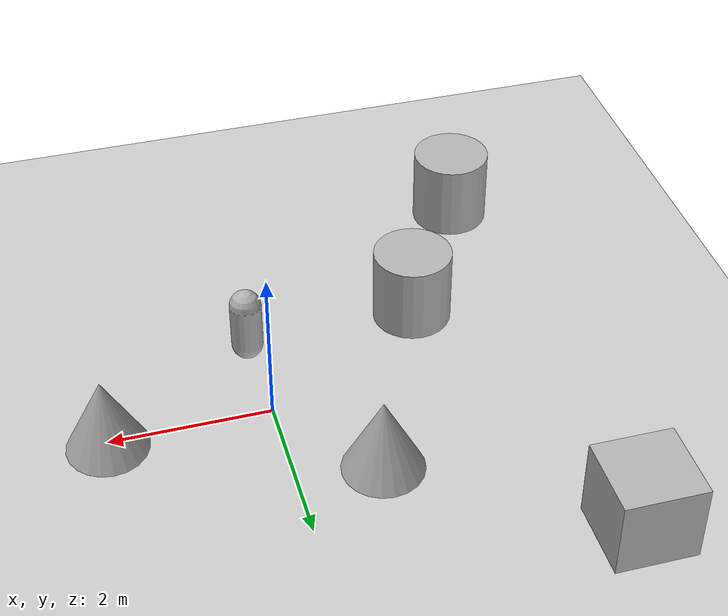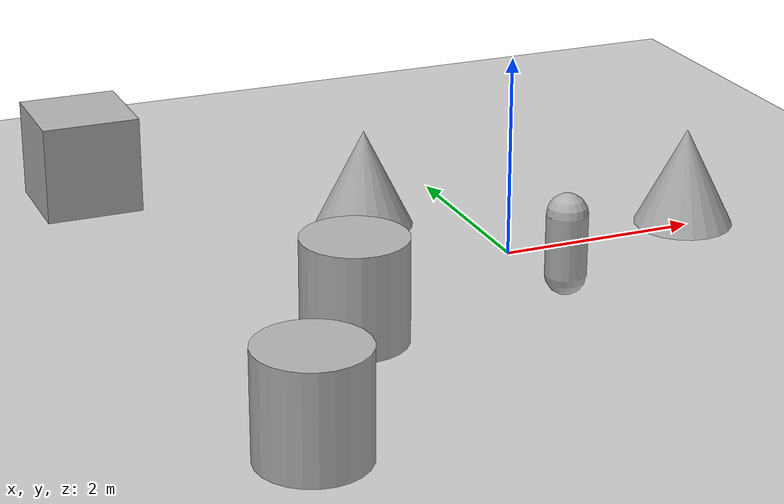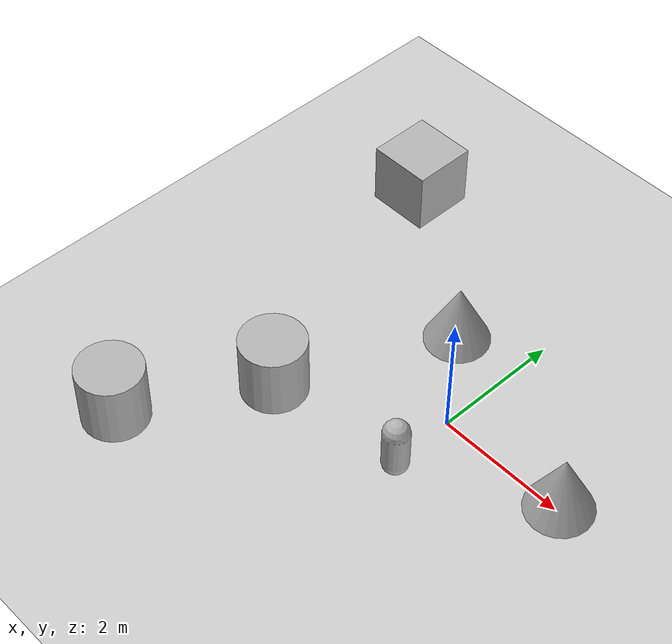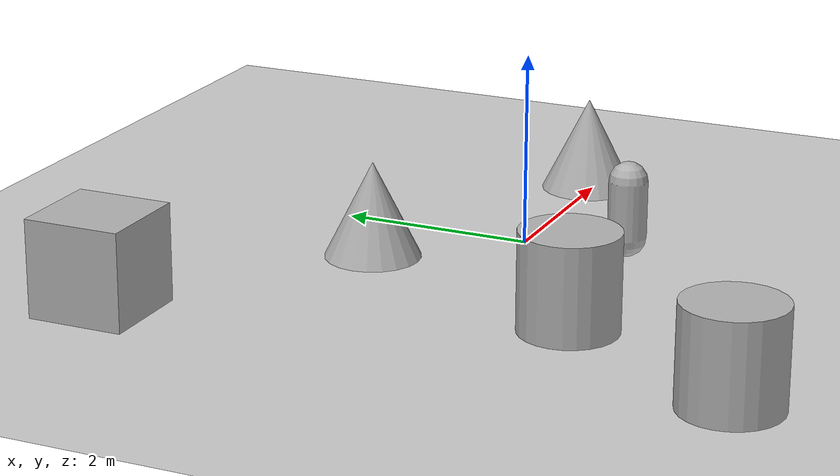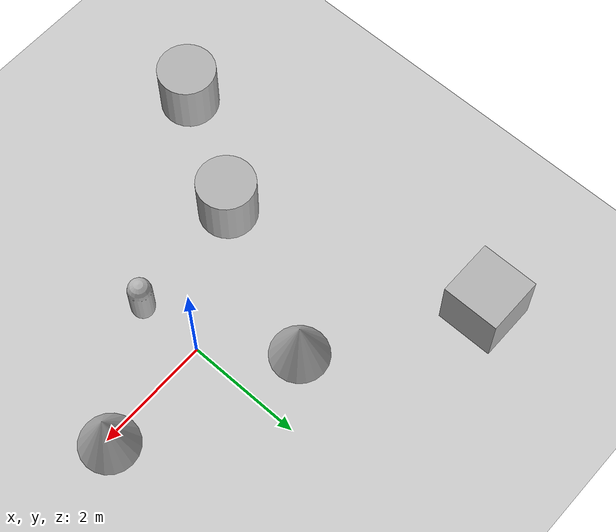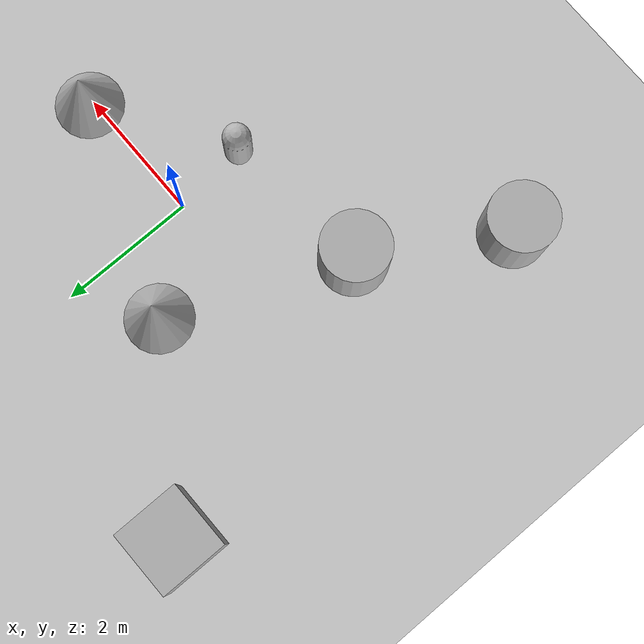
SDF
<sdf version='1.10'>
  <world name='empty'>
    <physics name='1ms' type='ignored'>
      <max_step_size>0.008</max_step_size>
      <real_time_factor>1</real_time_factor>
    </physics>
    <plugin name='gz::sim::systems::Physics' filename='gz-sim-physics-system'/>
    <plugin name='gz::sim::systems::UserCommands' filename='gz-sim-user-commands-system'/>
    <plugin name='gz::sim::systems::SceneBroadcaster' filename='gz-sim-scene-broadcaster-system'/>
    <plugin name='gz::sim::systems::Sensors' filename='gz-sim-sensors-system'>
      <render_engine>ogre2</render_engine>
    </plugin>
    <plugin name='gz::sim::systems::Contact' filename='gz-sim-contact-system'/>
    <plugin name='gz::sim::systems::Imu' filename='gz-sim-imu-system'/>
    <gravity>0 0 -9.8</gravity>
    <magnetic_field>5.5645e-06 2.28758e-05 -4.23884e-05</magnetic_field>
    <atmosphere type='adiabatic'/>
    <scene>
      <ambient>0.4 0.4 0.4 1</ambient>
      <background>0.7 0.7 0.7 1</background>
      <shadows>true</shadows>
    </scene>
    <model name='ground_plane'>
      <static>true</static>
      <link name='link'>
        <collision name='collision'>
          <geometry>
            <plane>
              <normal>0 0 1</normal>
              <size>100 100</size>
            </plane>
          </geometry>
          <surface>
            <friction>
              <ode/>
            </friction>
            <bounce/>
            <contact/>
          </surface>
        </collision>
        <visual name='visual'>
          <geometry>
            <plane>
              <normal>0 0 1</normal>
              <size>100 100</size>
            </plane>
          </geometry>
          <material>
            <ambient>0.800000012 0.800000012 0.800000012 1</ambient>
            <diffuse>0.800000012 0.800000012 0.800000012 1</diffuse>
            <specular>0.800000012 0.800000012 0.800000012 1</specular>
          </material>
        </visual>
        <pose>0 0 0 0 0 0</pose>
        <inertial>
          <pose>0 0 0 0 0 0</pose>
          <mass>1</mass>
          <inertia>
            <ixx>1</ixx>
            <ixy>0</ixy>
            <ixz>0</ixz>
            <iyy>1</iyy>
            <iyz>0</iyz>
            <izz>1</izz>
          </inertia>
        </inertial>
        <enable_wind>false</enable_wind>
      </link>
      <pose>0 0 0 0 0 0</pose>
      <self_collide>false</self_collide>
    </model>
    <model name='box'>
      <pose>-3.496140718460083 2.9788599014282227 0.49999999372787457 2.3584134510596992e-19 1.0178344142455331e-19 -4.2601430411892934e-20</pose>
      <link name='box_link'>
        <inertial>
          <inertia>
            <ixx>0.16666</ixx>
            <ixy>0</ixy>
            <ixz>0</ixz>
            <iyy>0.16666</iyy>
            <iyz>0</iyz>
            <izz>0.16666</izz>
          </inertia>
          <mass>1</mass>
          <pose>0 0 0 0 0 0</pose>
        </inertial>
        <collision name='box_collision'>
          <geometry>
            <box>
              <size>1 1 1</size>
            </box>
          </geometry>
          <surface>
            <friction>
              <ode/>
            </friction>
            <bounce/>
            <contact/>
          </surface>
        </collision>
        <visual name='box_visual'>
          <geometry>
            <box>
              <size>1 1 1</size>
            </box>
          </geometry>
          <material>
            <ambient>0.300000012 0.300000012 0.300000012 1</ambient>
            <diffuse>0.699999988 0.699999988 0.699999988 1</diffuse>
            <specular>1 1 1 1</specular>
          </material>
        </visual>
        <pose>0 0 0 0 0 0</pose>
        <enable_wind>false</enable_wind>
      </link>
      <static>false</static>
      <self_collide>false</self_collide>
    </model>
    <model name='cone'>
      <pose>2.0053477259607475 0.065855355066240601 0.4999998124005901 8.7418024087821319e-08 -5.4902019959893682e-08 -1.085374784870802e-12</pose>
      <link name='cone_link'>
        <inertial>
          <inertia>
            <ixx>0.074999999999999997</ixx>
            <ixy>0</ixy>
            <ixz>0</ixz>
            <iyy>0.074999999999999997</iyy>
            <iyz>0</iyz>
            <izz>0.074999999999999997</izz>
          </inertia>
          <mass>1</mass>
          <pose>0 0 0 0 0 0</pose>
        </inertial>
        <collision name='cone_collision'>
          <geometry>
            <cone>
              <radius>0.5</radius>
              <length>1</length>
            </cone>
          </geometry>
          <surface>
            <friction>
              <ode/>
            </friction>
            <bounce/>
            <contact/>
          </surface>
        </collision>
        <visual name='cone_visual'>
          <geometry>
            <cone>
              <radius>0.5</radius>
              <length>1</length>
            </cone>
          </geometry>
          <material>
            <ambient>0.300000012 0.300000012 0.300000012 1</ambient>
            <diffuse>0.699999988 0.699999988 0.699999988 1</diffuse>
            <specular>1 1 1 1</specular>
          </material>
        </visual>
        <pose>0 0 0 0 0 0</pose>
        <enable_wind>false</enable_wind>
      </link>
      <static>false</static>
      <self_collide>false</self_collide>
    </model>
    <model name='cylinder'>
      <pose>-3.2792599201202393 -3.2528445720672607 0.49999899471546572 6.2788540820099918e-17 -3.0820575076832965e-17 -4.6356714335623314e-20</pose>
      <link name='cylinder_link'>
        <inertial>
          <inertia>
            <ixx>0.14580000000000001</ixx>
            <ixy>0</ixy>
            <ixz>0</ixz>
            <iyy>0.14580000000000001</iyy>
            <iyz>0</iyz>
            <izz>0.125</izz>
          </inertia>
          <mass>1</mass>
          <pose>0 0 0 0 0 0</pose>
        </inertial>
        <collision name='cylinder_collision'>
          <geometry>
            <cylinder>
              <radius>0.5</radius>
              <length>1</length>
            </cylinder>
          </geometry>
          <surface>
            <friction>
              <ode/>
            </friction>
            <bounce/>
            <contact/>
          </surface>
        </collision>
        <visual name='cylinder_visual'>
          <geometry>
            <cylinder>
              <radius>0.5</radius>
              <length>1</length>
            </cylinder>
          </geometry>
          <material>
            <ambient>0.300000012 0.300000012 0.300000012 1</ambient>
            <diffuse>0.699999988 0.699999988 0.699999988 1</diffuse>
            <specular>1 1 1 1</specular>
          </material>
        </visual>
        <pose>0 0 0 0 0 0</pose>
        <enable_wind>false</enable_wind>
      </link>
      <static>false</static>
      <self_collide>false</self_collide>
    </model>
    <model name='cone_0'>
      <pose>-1.024346502054222 1.2590504802603806 0.49999999570992404 3.3631068259290499e-15 -4.9365018264362343e-08 -1.2646691584284652e-21</pose>
      <link name='cone_link'>
        <inertial>
          <inertia>
            <ixx>0.074999999999999997</ixx>
            <ixy>0</ixy>
            <ixz>0</ixz>
            <iyy>0.074999999999999997</iyy>
            <iyz>0</iyz>
            <izz>0.074999999999999997</izz>
          </inertia>
          <mass>1</mass>
          <pose>0 0 0 0 0 0</pose>
        </inertial>
        <collision name='cone_collision'>
          <geometry>
            <cone>
              <radius>0.5</radius>
              <length>1</length>
            </cone>
          </geometry>
          <surface>
            <friction>
              <ode/>
            </friction>
            <bounce/>
            <contact/>
          </surface>
        </collision>
        <visual name='cone_visual'>
          <geometry>
            <cone>
              <radius>0.5</radius>
              <length>1</length>
            </cone>
          </geometry>
          <material>
            <ambient>0.300000012 0.300000012 0.300000012 1</ambient>
            <diffuse>0.699999988 0.699999988 0.699999988 1</diffuse>
            <specular>1 1 1 1</specular>
          </material>
        </visual>
        <pose>0 0 0 0 0 0</pose>
        <enable_wind>false</enable_wind>
      </link>
      <static>false</static>
      <self_collide>false</self_collide>
    </model>
    <model name='cylinder_0'>
      <pose>-2.1433026553007708 -1.3039177861544431 0.49999899511755064 2.2737706843582225e-17 1.8320477284841736e-17 8.5410693397300417e-19</pose>
      <link name='cylinder_link'>
        <inertial>
          <inertia>
            <ixx>0.14580000000000001</ixx>
            <ixy>0</ixy>
            <ixz>0</ixz>
            <iyy>0.14580000000000001</iyy>
            <iyz>0</iyz>
            <izz>0.125</izz>
          </inertia>
          <mass>1</mass>
          <pose>0 0 0 0 0 0</pose>
        </inertial>
        <collision name='cylinder_collision'>
          <geometry>
            <cylinder>
              <radius>0.5</radius>
              <length>1</length>
            </cylinder>
          </geometry>
          <surface>
            <friction>
              <ode/>
            </friction>
            <bounce/>
            <contact/>
          </surface>
        </collision>
        <visual name='cylinder_visual'>
          <geometry>
            <cylinder>
              <radius>0.5</radius>
              <length>1</length>
            </cylinder>
          </geometry>
          <material>
            <ambient>0.300000012 0.300000012 0.300000012 1</ambient>
            <diffuse>0.699999988 0.699999988 0.699999988 1</diffuse>
            <specular>1 1 1 1</specular>
          </material>
        </visual>
        <pose>0 0 0 0 0 0</pose>
        <enable_wind>false</enable_wind>
      </link>
      <static>false</static>
      <self_collide>false</self_collide>
    </model>
    <model name='capsule'>
      <pose>0.066472459400896966 -1.0867253290120995 0.4999999937280627 0 0 0</pose>
      <link name='capsule_link'>
        <inertial>
          <inertia>
            <ixx>0.074153999999999998</ixx>
            <ixy>0</ixy>
            <ixz>0</ixz>
            <iyy>0.074153999999999998</iyy>
            <iyz>0</iyz>
            <izz>0.018769000000000001</izz>
          </inertia>
          <mass>1</mass>
          <pose>0 0 0 0 0 0</pose>
        </inertial>
        <collision name='capsule_collision'>
          <geometry>
            <capsule>
              <radius>0.20000000000000001</radius>
              <length>0.59999999999999998</length>
            </capsule>
          </geometry>
          <surface>
            <friction>
              <ode/>
            </friction>
            <bounce/>
            <contact/>
          </surface>
        </collision>
        <visual name='capsule_visual'>
          <geometry>
            <capsule>
              <radius>0.20000000000000001</radius>
              <length>0.59999999999999998</length>
            </capsule>
          </geometry>
          <material>
            <ambient>0.300000012 0.300000012 0.300000012 1</ambient>
            <diffuse>0.699999988 0.699999988 0.699999988 1</diffuse>
            <specular>1 1 1 1</specular>
          </material>
        </visual>
        <pose>0 0 0 0 0 0</pose>
        <enable_wind>false</enable_wind>
      </link>
      <static>false</static>
      <self_collide>false</self_collide>
    </model>
    <light name='sun' type='directional'>
      <pose>0 0 10 0 0 0</pose>
      <cast_shadows>true</cast_shadows>
      <intensity>1</intensity>
      <direction>-0.5 0.10000000000000001 -0.90000000000000002</direction>
      <diffuse>0.800000012 0.800000012 0.800000012 1</diffuse>
      <specular>0.200000003 0.200000003 0.200000003 1</specular>
      <attenuation>
        <range>1000</range>
        <linear>0.01</linear>
        <constant>0.90000000000000002</constant>
        <quadratic>0.001</quadratic>
      </attenuation>
      <spot>
        <inner_angle>0</inner_angle>
        <outer_angle>0</outer_angle>
        <falloff>0</falloff>
      </spot>
    </light>
  </world>
</sdf>
